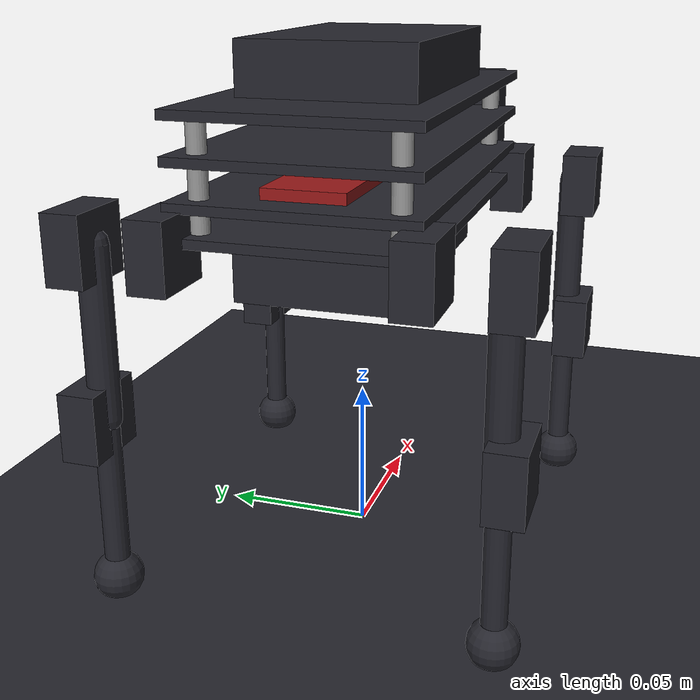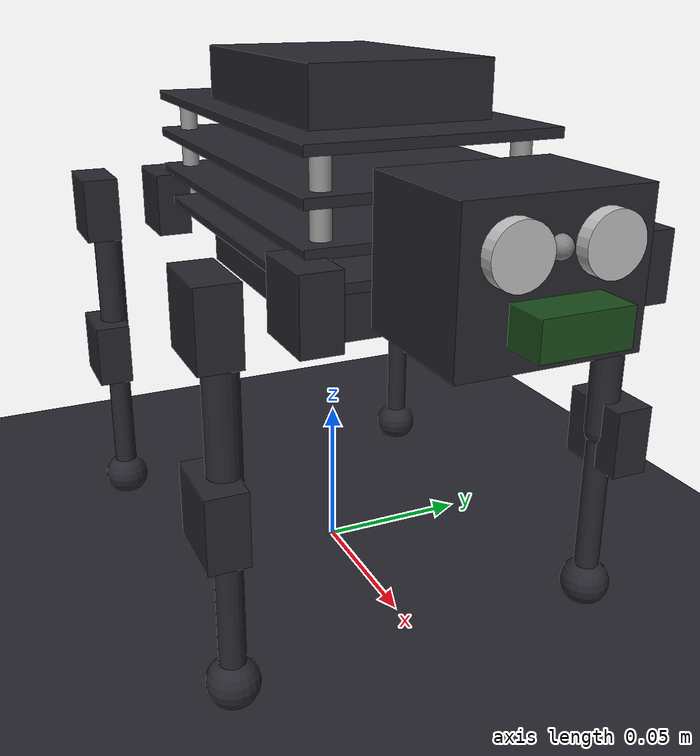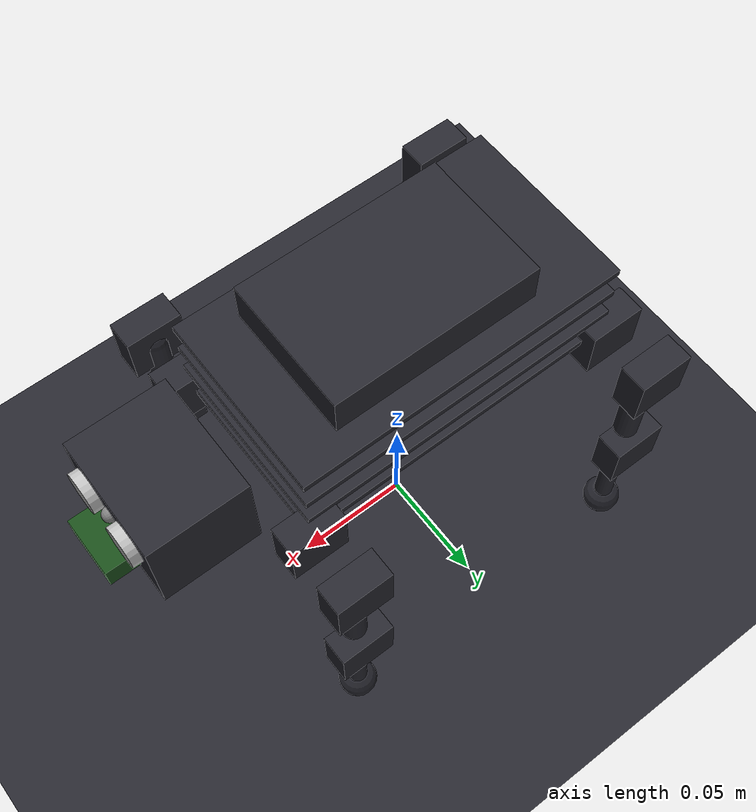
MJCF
<mujoco model="freenove_robot_dog">
  <!-- creature.xml — identical to freenove.xml v3.1 for train_v032.py compatibility -->
  <!-- 12 actuators (no head), foot geoms named FL/FR/RL/RR for pipeline -->
  <compiler angle="degree" coordinate="local" inertiafromgeom="true"/>
  <option timestep="0.005" gravity="0 0 -9.81" iterations="50" solver="Newton" integrator="Euler"/>
  <visual>
    <global offwidth="1920" offheight="1920"/>
  </visual>
  <default>
    <joint armature="0.005" damping="0.3" limited="true"/>
    <geom friction="0.7 0.3 0.01" condim="3" conaffinity="1" contype="1" rgba="0.15 0.15 0.18 1"/>
    <motor ctrllimited="true" ctrlrange="-1 1"/>
  </default>
  <asset>
    <texture type="skybox" builtin="gradient" rgb1="0.3 0.5 0.7" rgb2="0 0 0" width="512" height="3072"/>
    <texture type="2d" name="groundplane" builtin="checker" mark="edge" rgb1="0.2 0.3 0.4" rgb2="0.1 0.2 0.3" markrgb="0.8 0.8 0.8" width="300" height="300"/>
    <material name="groundplane" texture="groundplane" texuniform="true" texrepeat="5 5" reflectance="0.2"/>
    <material name="acrylic" rgba="0.12 0.12 0.15 0.9"/>
    <material name="acrylic_leg" rgba="0.1 0.1 0.13 0.85"/>
    <material name="servo" rgba="0.15 0.15 0.55 1"/>
    <material name="foot" rgba="0.08 0.08 0.08 1"/>
    <material name="pcb" rgba="0.0 0.4 0.0 1"/>
    <material name="battery" rgba="0.1 0.1 0.1 1"/>
  </asset>
  <worldbody>
    <light pos="-2 -2 3" dir="0.5 0.5 -0.7" directional="true" diffuse="0.9 0.85 0.75" specular="0.3 0.3 0.3" castshadow="true"/>
    <light pos="2 1 2" dir="-0.3 -0.2 -0.6" directional="true" diffuse="0.3 0.35 0.45"/>
    <geom name="floor" type="plane" size="10 10 0.1" material="groundplane" contype="1" conaffinity="1"/>
    <camera name="tracking" pos="-0.5 0.5 0.25" xyaxes="-1 -1 0 0.2 0 1" mode="trackcom"/>
    <camera name="side" pos="0 0.5 0.15" xyaxes="-1 0 0 0 0 1" mode="trackcom"/>
    <body name="base" pos="0 0 0.12">
      <freejoint name="root"/>
      <inertial pos="0 0 0.005" mass="0.35" diaginertia="0.0004 0.0008 0.0006"/>
      <geom name="plate_bot" type="box" size="0.068 0.038 0.0015" pos="0 0 -0.003" material="acrylic" mass="0.04"/>
      <geom name="plate_srv" type="box" size="0.068 0.038 0.0015" pos="0 0 0.007" material="acrylic" mass="0.04"/>
      <geom name="plate_elc" type="box" size="0.068 0.038 0.0015" pos="0 0 0.020" material="acrylic" mass="0.04"/>
      <geom name="plate_top" type="box" size="0.068 0.038 0.0015" pos="0 0 0.033" material="acrylic" mass="0.04"/>
      <geom type="cylinder" size="0.003 0.018" pos=" 0.060  0.030 0.015" rgba="0.6 0.6 0.6 1" mass="0.003"/>
      <geom type="cylinder" size="0.003 0.018" pos=" 0.060 -0.030 0.015" rgba="0.6 0.6 0.6 1" mass="0.003"/>
      <geom type="cylinder" size="0.003 0.018" pos="-0.060  0.030 0.015" rgba="0.6 0.6 0.6 1" mass="0.003"/>
      <geom type="cylinder" size="0.003 0.018" pos="-0.060 -0.030 0.015" rgba="0.6 0.6 0.6 1" mass="0.003"/>
      <geom name="rpi" type="box" size="0.0425 0.028 0.0085" pos="0.005 0 0.043" material="pcb" mass="0.046"/>
      <geom name="battery" type="box" size="0.05 0.025 0.01" pos="0 0 -0.015" material="battery" mass="0.12"/>
      <geom name="pca9685" type="box" size="0.031 0.013 0.002" pos="-0.025 0 0.010" rgba="0.6 0.1 0.1 1" mass="0.008"/>
      <site name="imu" pos="0 0 0.015" size="0.003"/>
      <body name="head" pos="0.085 0 0.010">
        <joint name="head_pan" type="hinge" axis="0 0 1" range="-45 45" damping="0.3"/>
        <geom name="head_bracket" type="box" size="0.020 0.025 0.020" pos="0.015 0 0" material="acrylic" mass="0.015"/>
        <geom name="us_L" type="cylinder" size="0.008 0.004" pos="0.035 0.012 0.008" euler="0 90 0" rgba="0.75 0.75 0.75 1" mass="0.004"/>
        <geom name="us_R" type="cylinder" size="0.008 0.004" pos="0.035 -0.012 0.008" euler="0 90 0" rgba="0.75 0.75 0.75 1" mass="0.004"/>
        <geom name="cam" type="box" size="0.012 0.012 0.005" pos="0.035 0 -0.008" rgba="0.1 0.3 0.1 1" mass="0.003"/>
        <camera name="onboard" pos="0.035 0 -0.005" xyaxes="0 -1 0 0 0 1" fovy="60" resolution="64 48"/>
        <site name="rangefinder" pos="0.035 0 0.008" euler="0 90 0" size="0.003"/>
      </body>
      <body name="fl_hip" pos="0.068 0.038 -0.005">
        <joint name="fl_hip_yaw" type="hinge" axis="0 0 1" range="-30 30" ref="0"/>
        <geom name="fl_s0" type="box" size="0.0115 0.006 0.011" material="servo" mass="0.009"/>
        <body name="fl_upper" pos="0 0.023 0">
          <joint name="fl_hip_pitch" type="hinge" axis="0 1 0" range="-70 70" ref="-38"/>
          <geom name="fl_s1" type="box" size="0.0115 0.006 0.011" pos="0 0.003 0" material="servo" mass="0.009"/>
          <geom name="fl_ug" type="capsule" fromto="0 0 0 0 0 -0.055" size="0.005" material="acrylic_leg" mass="0.006"/>
          <body name="fl_lower" pos="0 0 -0.055">
            <joint name="fl_knee" type="hinge" axis="0 1 0" range="0 150" ref="91"/>
            <geom name="fl_s2" type="box" size="0.0115 0.006 0.011" pos="0 0.003 0" material="servo" mass="0.009"/>
            <geom name="fl_lg" type="capsule" fromto="0 0 0 0 0 -0.055" size="0.004" material="acrylic_leg" mass="0.005"/>
            <geom name="FL" type="sphere" pos="0 0 -0.055" size="0.008" material="foot" mass="0.002" friction="1.0 0.5 0.01"/>
            <site name="fl_contact" pos="0 0 -0.055" size="0.006"/>
          </body>
        </body>
      </body>
      <body name="fr_hip" pos="0.068 -0.038 -0.005">
        <joint name="fr_hip_yaw" type="hinge" axis="0 0 1" range="-30 30" ref="0"/>
        <geom name="fr_s0" type="box" size="0.0115 0.006 0.011" material="servo" mass="0.009"/>
        <body name="fr_upper" pos="0 -0.023 0">
          <joint name="fr_hip_pitch" type="hinge" axis="0 1 0" range="-70 70" ref="-38"/>
          <geom name="fr_s1" type="box" size="0.0115 0.006 0.011" pos="0 -0.003 0" material="servo" mass="0.009"/>
          <geom name="fr_ug" type="capsule" fromto="0 0 0 0 0 -0.055" size="0.005" material="acrylic_leg" mass="0.006"/>
          <body name="fr_lower" pos="0 0 -0.055">
            <joint name="fr_knee" type="hinge" axis="0 1 0" range="0 150" ref="91"/>
            <geom name="fr_s2" type="box" size="0.0115 0.006 0.011" pos="0 -0.003 0" material="servo" mass="0.009"/>
            <geom name="fr_lg" type="capsule" fromto="0 0 0 0 0 -0.055" size="0.004" material="acrylic_leg" mass="0.005"/>
            <geom name="FR" type="sphere" pos="0 0 -0.055" size="0.008" material="foot" mass="0.002" friction="1.0 0.5 0.01"/>
            <site name="fr_contact" pos="0 0 -0.055" size="0.006"/>
          </body>
        </body>
      </body>
      <body name="rl_hip" pos="-0.068 0.038 -0.005">
        <joint name="rl_hip_yaw" type="hinge" axis="0 0 1" range="-30 30" ref="0"/>
        <geom name="rl_s0" type="box" size="0.0115 0.006 0.011" material="servo" mass="0.009"/>
        <body name="rl_upper" pos="0 0.023 0">
          <joint name="rl_hip_pitch" type="hinge" axis="0 1 0" range="-70 70" ref="-38"/>
          <geom name="rl_s1" type="box" size="0.0115 0.006 0.011" pos="0 0.003 0" material="servo" mass="0.009"/>
          <geom name="rl_ug" type="capsule" fromto="0 0 0 0 0 -0.055" size="0.005" material="acrylic_leg" mass="0.006"/>
          <body name="rl_lower" pos="0 0 -0.055">
            <joint name="rl_knee" type="hinge" axis="0 1 0" range="0 150" ref="91"/>
            <geom name="rl_s2" type="box" size="0.0115 0.006 0.011" pos="0 0.003 0" material="servo" mass="0.009"/>
            <geom name="rl_lg" type="capsule" fromto="0 0 0 0 0 -0.055" size="0.004" material="acrylic_leg" mass="0.005"/>
            <geom name="RL" type="sphere" pos="0 0 -0.055" size="0.008" material="foot" mass="0.002" friction="1.0 0.5 0.01"/>
            <site name="rl_contact" pos="0 0 -0.055" size="0.006"/>
          </body>
        </body>
      </body>
      <body name="rr_hip" pos="-0.068 -0.038 -0.005">
        <joint name="rr_hip_yaw" type="hinge" axis="0 0 1" range="-30 30" ref="0"/>
        <geom name="rr_s0" type="box" size="0.0115 0.006 0.011" material="servo" mass="0.009"/>
        <body name="rr_upper" pos="0 -0.023 0">
          <joint name="rr_hip_pitch" type="hinge" axis="0 1 0" range="-70 70" ref="-38"/>
          <geom name="rr_s1" type="box" size="0.0115 0.006 0.011" pos="0 -0.003 0" material="servo" mass="0.009"/>
          <geom name="rr_ug" type="capsule" fromto="0 0 0 0 0 -0.055" size="0.005" material="acrylic_leg" mass="0.006"/>
          <body name="rr_lower" pos="0 0 -0.055">
            <joint name="rr_knee" type="hinge" axis="0 1 0" range="0 150" ref="91"/>
            <geom name="rr_s2" type="box" size="0.0115 0.006 0.011" pos="0 -0.003 0" material="servo" mass="0.009"/>
            <geom name="rr_lg" type="capsule" fromto="0 0 0 0 0 -0.055" size="0.004" material="acrylic_leg" mass="0.005"/>
            <geom name="RR" type="sphere" pos="0 0 -0.055" size="0.008" material="foot" mass="0.002" friction="1.0 0.5 0.01"/>
            <site name="rr_contact" pos="0 0 -0.055" size="0.006"/>
          </body>
        </body>
      </body>
    </body>
  </worldbody>
  <actuator>
    <position name="fl_yaw_act" joint="fl_hip_yaw" kp="3" ctrlrange="-0.524 0.524"/>
    <position name="fl_pitch_act" joint="fl_hip_pitch" kp="3" ctrlrange="-1.222 1.222"/>
    <position name="fl_knee_act" joint="fl_knee" kp="3" ctrlrange="0 2.618"/>
    <position name="fr_yaw_act" joint="fr_hip_yaw" kp="3" ctrlrange="-0.524 0.524"/>
    <position name="fr_pitch_act" joint="fr_hip_pitch" kp="3" ctrlrange="-1.222 1.222"/>
    <position name="fr_knee_act" joint="fr_knee" kp="3" ctrlrange="0 2.618"/>
    <position name="rl_yaw_act" joint="rl_hip_yaw" kp="3" ctrlrange="-0.524 0.524"/>
    <position name="rl_pitch_act" joint="rl_hip_pitch" kp="3" ctrlrange="-1.222 1.222"/>
    <position name="rl_knee_act" joint="rl_knee" kp="3" ctrlrange="0 2.618"/>
    <position name="rr_yaw_act" joint="rr_hip_yaw" kp="3" ctrlrange="-0.524 0.524"/>
    <position name="rr_pitch_act" joint="rr_hip_pitch" kp="3" ctrlrange="-1.222 1.222"/>
    <position name="rr_knee_act" joint="rr_knee" kp="3" ctrlrange="0 2.618"/>
  </actuator>
  <sensor>
    <accelerometer name="imu_accel" site="imu"/>
    <gyro name="imu_gyro" site="imu"/>
    <framequat name="body_quat" objtype="body" objname="base"/>
    <rangefinder name="ultrasonic" site="rangefinder"/>
    <touch name="fl_touch" site="fl_contact"/>
    <touch name="fr_touch" site="fr_contact"/>
    <touch name="rl_touch" site="rl_contact"/>
    <touch name="rr_touch" site="rr_contact"/>
    <velocimeter name="body_vel" site="imu"/>
    <subtreecom name="com" body="base"/>
  </sensor>
</mujoco>
